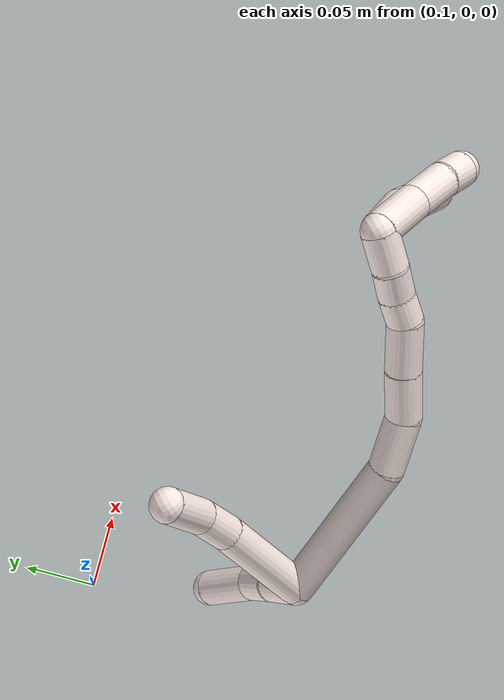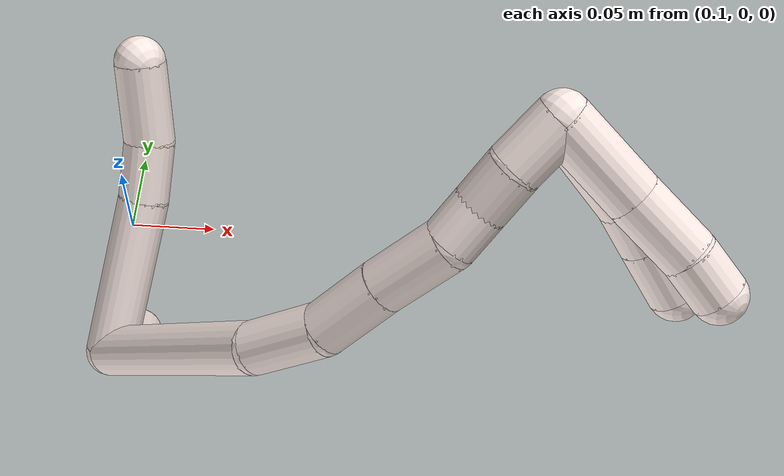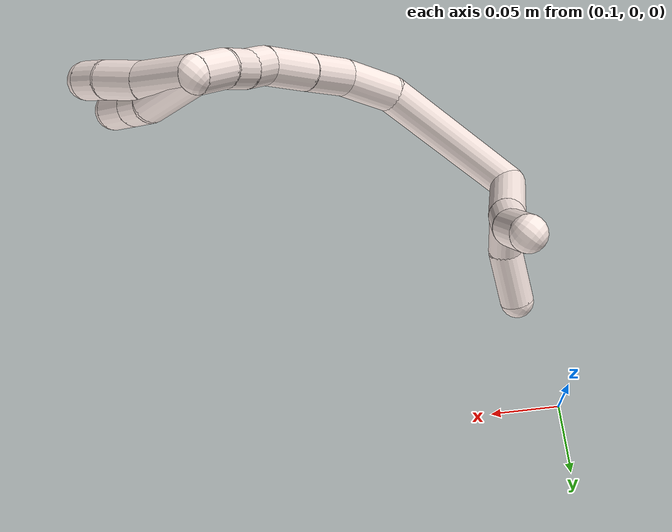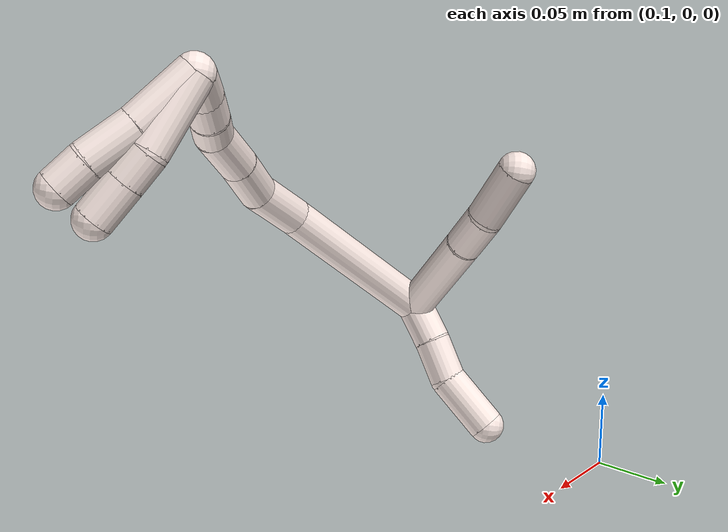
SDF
<sdf version="1.7">
 <world name="default">
  <model name="11">
   <static>0</static>
   <link name="11">
    <collision name="collision-cylinder-e_1_2_8">
     <pose>0.004165 0.039157 -0.008656 -1.78836 0.103485 -0.128796</pose>
     <geometry><cylinder><radius>0.0125</radius><length>0.080635</length></cylinder></geometry>
     <surface>
      <friction><ode><mu>1.16</mu><mu2>1.16</mu2><slip1>0</slip1><slip2>0</slip2></ode></friction>
      <contact><ode><kp>1e+06</kp><kd>1</kd><max_vel>0</max_vel><min_depth>0.001</min_depth></ode></contact>
     </surface>
    </collision>
    <visual name="visual-cylinder-e_1_2_8">
     <pose>0.004165 0.039157 -0.008656 -1.78836 0.103485 -0.128796</pose>
     <geometry><cylinder><radius>0.0125</radius><length>0.080635</length></cylinder></geometry>
     <material><ambient>1 0.933333 0.909804 1</ambient></material>
    </visual>
    <collision name="collision-cylinder-e_2_8_9">
     <pose>0.008404 0.092447 -0.021108 -1.83319 0.005107 -0.00666</pose>
     <geometry><cylinder><radius>0.0125</radius><length>0.02927</length></cylinder></geometry>
     <surface>
      <friction><ode><mu>1.16</mu><mu2>1.16</mu2><slip1>0</slip1><slip2>0</slip2></ode></friction>
      <contact><ode><kp>1e+06</kp><kd>1</kd><max_vel>0</max_vel><min_depth>0.001</min_depth></ode></contact>
     </surface>
    </collision>
    <visual name="visual-cylinder-e_2_8_9">
     <pose>0.008404 0.092447 -0.021108 -1.83319 0.005107 -0.00666</pose>
     <geometry><cylinder><radius>0.0125</radius><length>0.02927</length></cylinder></geometry>
     <material><ambient>1 0.933333 0.909804 1</ambient></material>
    </visual>
    <collision name="collision-cylinder-e_3_9_6">
     <pose>0.004015 0.125233 -0.030743 -1.87416 -0.22457 0.304525</pose>
     <geometry><cylinder><radius>0.0125</radius><length>0.040095</length></cylinder></geometry>
     <surface>
      <friction><ode><mu>1.16</mu><mu2>1.16</mu2><slip1>0</slip1><slip2>0</slip2></ode></friction>
      <contact><ode><kp>1e+06</kp><kd>1</kd><max_vel>0</max_vel><min_depth>0.001</min_depth></ode></contact>
     </surface>
    </collision>
    <visual name="visual-cylinder-e_3_9_6">
     <pose>0.004015 0.125233 -0.030743 -1.87416 -0.22457 0.304525</pose>
     <geometry><cylinder><radius>0.0125</radius><length>0.040095</length></cylinder></geometry>
     <material><ambient>1 0.933333 0.909804 1</ambient></material>
    </visual>
    <collision name="collision-cylinder-e_1_2_10">
     <pose>0.010725 -0.005543 -0.007502 2.50522 0.855005 1.88967</pose>
     <geometry><cylinder><radius>0.0125</radius><length>0.028428</length></cylinder></geometry>
     <surface>
      <friction><ode><mu>1.16</mu><mu2>1.16</mu2><slip1>0</slip1><slip2>0</slip2></ode></friction>
      <contact><ode><kp>1e+06</kp><kd>1</kd><max_vel>0</max_vel><min_depth>0.001</min_depth></ode></contact>
     </surface>
    </collision>
    <visual name="visual-cylinder-e_1_2_10">
     <pose>0.010725 -0.005543 -0.007502 2.50522 0.855005 1.88967</pose>
     <geometry><cylinder><radius>0.0125</radius><length>0.028428</length></cylinder></geometry>
     <material><ambient>1 0.933333 0.909804 1</ambient></material>
    </visual>
    <collision name="collision-cylinder-e_2_10_11">
     <pose>0.032158 -0.018191 -0.02199 2.34778 0.821316 1.60886</pose>
     <geometry><cylinder><radius>0.0125</radius><length>0.029253</length></cylinder></geometry>
     <surface>
      <friction><ode><mu>1.16</mu><mu2>1.16</mu2><slip1>0</slip1><slip2>0</slip2></ode></friction>
      <contact><ode><kp>1e+06</kp><kd>1</kd><max_vel>0</max_vel><min_depth>0.001</min_depth></ode></contact>
     </surface>
    </collision>
    <visual name="visual-cylinder-e_2_10_11">
     <pose>0.032158 -0.018191 -0.02199 2.34778 0.821316 1.60886</pose>
     <geometry><cylinder><radius>0.0125</radius><length>0.029253</length></cylinder></geometry>
     <material><ambient>1 0.933333 0.909804 1</ambient></material>
    </visual>
    <collision name="collision-cylinder-e_3_11_5">
     <pose>0.055829 -0.032304 -0.04416 2.70919 0.659438 2.00041</pose>
     <geometry><cylinder><radius>0.0125</radius><length>0.042319</length></cylinder></geometry>
     <surface>
      <friction><ode><mu>1.16</mu><mu2>1.16</mu2><slip1>0</slip1><slip2>0</slip2></ode></friction>
      <contact><ode><kp>1e+06</kp><kd>1</kd><max_vel>0</max_vel><min_depth>0.001</min_depth></ode></contact>
     </surface>
    </collision>
    <visual name="visual-cylinder-e_3_11_5">
     <pose>0.055829 -0.032304 -0.04416 2.70919 0.659438 2.00041</pose>
     <geometry><cylinder><radius>0.0125</radius><length>0.042319</length></cylinder></geometry>
     <material><ambient>1 0.933333 0.909804 1</ambient></material>
    </visual>
    <collision name="collision-cylinder-e_1_2_12">
     <pose>-0.002458 0.034378 0.048169 -0.619862 -0.041503 0.013293</pose>
     <geometry><cylinder><radius>0.0125</radius><length>0.118459</length></cylinder></geometry>
     <surface>
      <friction><ode><mu>1.16</mu><mu2>1.16</mu2><slip1>0</slip1><slip2>0</slip2></ode></friction>
      <contact><ode><kp>1e+06</kp><kd>1</kd><max_vel>0</max_vel><min_depth>0.001</min_depth></ode></contact>
     </surface>
    </collision>
    <visual name="visual-cylinder-e_1_2_12">
     <pose>-0.002458 0.034378 0.048169 -0.619862 -0.041503 0.013293</pose>
     <geometry><cylinder><radius>0.0125</radius><length>0.118459</length></cylinder></geometry>
     <material><ambient>1 0.933333 0.909804 1</ambient></material>
    </visual>
    <collision name="collision-cylinder-e_2_12_13">
     <pose>-0.000855 0.082502 0.110113 -0.784338 0.205668 -0.085312</pose>
     <geometry><cylinder><radius>0.0125</radius><length>0.039759</length></cylinder></geometry>
     <surface>
      <friction><ode><mu>1.16</mu><mu2>1.16</mu2><slip1>0</slip1><slip2>0</slip2></ode></friction>
      <contact><ode><kp>1e+06</kp><kd>1</kd><max_vel>0</max_vel><min_depth>0.001</min_depth></ode></contact>
     </surface>
    </collision>
    <visual name="visual-cylinder-e_2_12_13">
     <pose>-0.000855 0.082502 0.110113 -0.784338 0.205668 -0.085312</pose>
     <geometry><cylinder><radius>0.0125</radius><length>0.039759</length></cylinder></geometry>
     <material><ambient>1 0.933333 0.909804 1</ambient></material>
    </visual>
    <collision name="collision-cylinder-e_3_13_14">
     <pose>0.007415 0.111712 0.131615 -1.10739 0.238917 -0.148135</pose>
     <geometry><cylinder><radius>0.0125</radius><length>0.035585</length></cylinder></geometry>
     <surface>
      <friction><ode><mu>1.16</mu><mu2>1.16</mu2><slip1>0</slip1><slip2>0</slip2></ode></friction>
      <contact><ode><kp>1e+06</kp><kd>1</kd><max_vel>0</max_vel><min_depth>0.001</min_depth></ode></contact>
     </surface>
    </collision>
    <visual name="visual-cylinder-e_3_13_14">
     <pose>0.007415 0.111712 0.131615 -1.10739 0.238917 -0.148135</pose>
     <geometry><cylinder><radius>0.0125</radius><length>0.035585</length></cylinder></geometry>
     <material><ambient>1 0.933333 0.909804 1</ambient></material>
    </visual>
    <collision name="collision-cylinder-e_4_14_15">
     <pose>0.016214 0.142684 0.148065 -1.05844 0.252384 -0.14813</pose>
     <geometry><cylinder><radius>0.0125</radius><length>0.036748</length></cylinder></geometry>
     <surface>
      <friction><ode><mu>1.16</mu><mu2>1.16</mu2><slip1>0</slip1><slip2>0</slip2></ode></friction>
      <contact><ode><kp>1e+06</kp><kd>1</kd><max_vel>0</max_vel><min_depth>0.001</min_depth></ode></contact>
     </surface>
    </collision>
    <visual name="visual-cylinder-e_4_14_15">
     <pose>0.016214 0.142684 0.148065 -1.05844 0.252384 -0.14813</pose>
     <geometry><cylinder><radius>0.0125</radius><length>0.036748</length></cylinder></geometry>
     <material><ambient>1 0.933333 0.909804 1</ambient></material>
    </visual>
    <collision name="collision-cylinder-e_5_15_16">
     <pose>0.023918 0.167697 0.158588 -1.38358 0.311541 -0.25872</pose>
     <geometry><cylinder><radius>0.0125</radius><length>0.020328</length></cylinder></geometry>
     <surface>
      <friction><ode><mu>1.16</mu><mu2>1.16</mu2><slip1>0</slip1><slip2>0</slip2></ode></friction>
      <contact><ode><kp>1e+06</kp><kd>1</kd><max_vel>0</max_vel><min_depth>0.001</min_depth></ode></contact>
     </surface>
    </collision>
    <visual name="visual-cylinder-e_5_15_16">
     <pose>0.023918 0.167697 0.158588 -1.38358 0.311541 -0.25872</pose>
     <geometry><cylinder><radius>0.0125</radius><length>0.020328</length></cylinder></geometry>
     <material><ambient>1 0.933333 0.909804 1</ambient></material>
    </visual>
    <collision name="collision-cylinder-e_6_16_17">
     <pose>0.029107 0.187593 0.163049 -1.32012 0.190943 -0.14839</pose>
     <geometry><cylinder><radius>0.0125</radius><length>0.021849</length></cylinder></geometry>
     <surface>
      <friction><ode><mu>1.16</mu><mu2>1.16</mu2><slip1>0</slip1><slip2>0</slip2></ode></friction>
      <contact><ode><kp>1e+06</kp><kd>1</kd><max_vel>0</max_vel><min_depth>0.001</min_depth></ode></contact>
     </surface>
    </collision>
    <visual name="visual-cylinder-e_6_16_17">
     <pose>0.029107 0.187593 0.163049 -1.32012 0.190943 -0.14839</pose>
     <geometry><cylinder><radius>0.0125</radius><length>0.021849</length></cylinder></geometry>
     <material><ambient>1 0.933333 0.909804 1</ambient></material>
    </visual>
    <collision name="collision-cylinder-e_7_17_1">
     <pose>0.03615 0.210338 0.168647 -1.33735 0.373096 -0.29607</pose>
     <geometry><cylinder><radius>0.0125</radius><length>0.027271</length></cylinder></geometry>
     <surface>
      <friction><ode><mu>1.16</mu><mu2>1.16</mu2><slip1>0</slip1><slip2>0</slip2></ode></friction>
      <contact><ode><kp>1e+06</kp><kd>1</kd><max_vel>0</max_vel><min_depth>0.001</min_depth></ode></contact>
     </surface>
    </collision>
    <visual name="visual-cylinder-e_7_17_1">
     <pose>0.03615 0.210338 0.168647 -1.33735 0.373096 -0.29607</pose>
     <geometry><cylinder><radius>0.0125</radius><length>0.027271</length></cylinder></geometry>
     <material><ambient>1 0.933333 0.909804 1</ambient></material>
    </visual>
    <collision name="collision-cylinder-e_1_1_18">
     <pose>0.054354 0.212042 0.185738 0.645 0.641676 0.221194</pose>
     <geometry><cylinder><radius>0.0125</radius><length>0.04422</length></cylinder></geometry>
     <surface>
      <friction><ode><mu>1.16</mu><mu2>1.16</mu2><slip1>0</slip1><slip2>0</slip2></ode></friction>
      <contact><ode><kp>1e+06</kp><kd>1</kd><max_vel>0</max_vel><min_depth>0.001</min_depth></ode></contact>
     </surface>
    </collision>
    <visual name="visual-cylinder-e_1_1_18">
     <pose>0.054354 0.212042 0.185738 0.645 0.641676 0.221194</pose>
     <geometry><cylinder><radius>0.0125</radius><length>0.04422</length></cylinder></geometry>
     <material><ambient>1 0.933333 0.909804 1</ambient></material>
    </visual>
    <collision name="collision-cylinder-e_2_18_19">
     <pose>0.076561 0.193997 0.212052 0.546455 0.562476 0.161565</pose>
     <geometry><cylinder><radius>0.0125</radius><length>0.033651</length></cylinder></geometry>
     <surface>
      <friction><ode><mu>1.16</mu><mu2>1.16</mu2><slip1>0</slip1><slip2>0</slip2></ode></friction>
      <contact><ode><kp>1e+06</kp><kd>1</kd><max_vel>0</max_vel><min_depth>0.001</min_depth></ode></contact>
     </surface>
    </collision>
    <visual name="visual-cylinder-e_2_18_19">
     <pose>0.076561 0.193997 0.212052 0.546455 0.562476 0.161565</pose>
     <geometry><cylinder><radius>0.0125</radius><length>0.033651</length></cylinder></geometry>
     <material><ambient>1 0.933333 0.909804 1</ambient></material>
    </visual>
    <collision name="collision-cylinder-e_3_19_4">
     <pose>0.091407 0.18045 0.23129 0.715465 0.559653 0.214024</pose>
     <geometry><cylinder><radius>0.0125</radius><length>0.022129</length></cylinder></geometry>
     <surface>
      <friction><ode><mu>1.16</mu><mu2>1.16</mu2><slip1>0</slip1><slip2>0</slip2></ode></friction>
      <contact><ode><kp>1e+06</kp><kd>1</kd><max_vel>0</max_vel><min_depth>0.001</min_depth></ode></contact>
     </surface>
    </collision>
    <visual name="visual-cylinder-e_3_19_4">
     <pose>0.091407 0.18045 0.23129 0.715465 0.559653 0.214024</pose>
     <geometry><cylinder><radius>0.0125</radius><length>0.022129</length></cylinder></geometry>
     <material><ambient>1 0.933333 0.909804 1</ambient></material>
    </visual>
    <collision name="collision-cylinder-e_1_1_20">
     <pose>0.059516 0.207777 0.181425 0.987508 0.799945 0.447459</pose>
     <geometry><cylinder><radius>0.0125</radius><length>0.051289</length></cylinder></geometry>
     <surface>
      <friction><ode><mu>1.16</mu><mu2>1.16</mu2><slip1>0</slip1><slip2>0</slip2></ode></friction>
      <contact><ode><kp>1e+06</kp><kd>1</kd><max_vel>0</max_vel><min_depth>0.001</min_depth></ode></contact>
     </surface>
    </collision>
    <visual name="visual-cylinder-e_1_1_20">
     <pose>0.059516 0.207777 0.181425 0.987508 0.799945 0.447459</pose>
     <geometry><cylinder><radius>0.0125</radius><length>0.051289</length></cylinder></geometry>
     <material><ambient>1 0.933333 0.909804 1</ambient></material>
    </visual>
    <collision name="collision-cylinder-e_2_20_21">
     <pose>0.083632 0.18582 0.19674 0.910153 0.570231 0.284904</pose>
     <geometry><cylinder><radius>0.0125</radius><length>0.021195</length></cylinder></geometry>
     <surface>
      <friction><ode><mu>1.16</mu><mu2>1.16</mu2><slip1>0</slip1><slip2>0</slip2></ode></friction>
      <contact><ode><kp>1e+06</kp><kd>1</kd><max_vel>0</max_vel><min_depth>0.001</min_depth></ode></contact>
     </surface>
    </collision>
    <visual name="visual-cylinder-e_2_20_21">
     <pose>0.083632 0.18582 0.19674 0.910153 0.570231 0.284904</pose>
     <geometry><cylinder><radius>0.0125</radius><length>0.021195</length></cylinder></geometry>
     <material><ambient>1 0.933333 0.909804 1</ambient></material>
    </visual>
    <collision name="collision-cylinder-e_3_21_3">
     <pose>0.096767 0.169707 0.20943 0.898735 0.569139 0.280289</pose>
     <geometry><cylinder><radius>0.0125</radius><length>0.027516</length></cylinder></geometry>
     <surface>
      <friction><ode><mu>1.16</mu><mu2>1.16</mu2><slip1>0</slip1><slip2>0</slip2></ode></friction>
      <contact><ode><kp>1e+06</kp><kd>1</kd><max_vel>0</max_vel><min_depth>0.001</min_depth></ode></contact>
     </surface>
    </collision>
    <visual name="visual-cylinder-e_3_21_3">
     <pose>0.096767 0.169707 0.20943 0.898735 0.569139 0.280289</pose>
     <geometry><cylinder><radius>0.0125</radius><length>0.027516</length></cylinder></geometry>
     <material><ambient>1 0.933333 0.909804 1</ambient></material>
    </visual>
    <collision name="collision-sphere-3">
     <pose>0.104181 0.160638 0.216645 0 -0 0</pose>
     <geometry><sphere><radius>0.0125</radius></sphere></geometry>
     <surface>
      <friction><ode><mu>1.16</mu><mu2>1.16</mu2><slip1>0</slip1><slip2>0</slip2></ode></friction>
      <contact><ode><kp>1e+06</kp><kd>1</kd><max_vel>0</max_vel><min_depth>0.001</min_depth></ode></contact>
     </surface>
    </collision>
    <visual name="visual-sphere-3">
     <pose>0.104181 0.160638 0.216645 0 -0 0</pose>
     <geometry><sphere><radius>0.0125</radius></sphere></geometry>
     <material><ambient>1 0.933333 0.909804 1</ambient></material>
    </visual>
    <collision name="collision-sphere-21">
     <pose>0.089353 0.178776 0.202214 0 -0 0</pose>
     <geometry><sphere><radius>0.0125</radius></sphere></geometry>
     <surface>
      <friction><ode><mu>1.16</mu><mu2>1.16</mu2><slip1>0</slip1><slip2>0</slip2></ode></friction>
      <contact><ode><kp>1e+06</kp><kd>1</kd><max_vel>0</max_vel><min_depth>0.001</min_depth></ode></contact>
     </surface>
    </collision>
    <visual name="visual-sphere-21">
     <pose>0.089353 0.178776 0.202214 0 -0 0</pose>
     <geometry><sphere><radius>0.0125</radius></sphere></geometry>
     <material><ambient>1 0.933333 0.909804 1</ambient></material>
    </visual>
    <collision name="collision-sphere-20">
     <pose>0.077911 0.192864 0.191266 0 -0 0</pose>
     <geometry><sphere><radius>0.0125</radius></sphere></geometry>
     <surface>
      <friction><ode><mu>1.16</mu><mu2>1.16</mu2><slip1>0</slip1><slip2>0</slip2></ode></friction>
      <contact><ode><kp>1e+06</kp><kd>1</kd><max_vel>0</max_vel><min_depth>0.001</min_depth></ode></contact>
     </surface>
    </collision>
    <visual name="visual-sphere-20">
     <pose>0.077911 0.192864 0.191266 0 -0 0</pose>
     <geometry><sphere><radius>0.0125</radius></sphere></geometry>
     <material><ambient>1 0.933333 0.909804 1</ambient></material>
    </visual>
    <collision name="collision-sphere-4">
     <pose>0.097282 0.174299 0.238368 0 -0 0</pose>
     <geometry><sphere><radius>0.0125</radius></sphere></geometry>
     <surface>
      <friction><ode><mu>1.16</mu><mu2>1.16</mu2><slip1>0</slip1><slip2>0</slip2></ode></friction>
      <contact><ode><kp>1e+06</kp><kd>1</kd><max_vel>0</max_vel><min_depth>0.001</min_depth></ode></contact>
     </surface>
    </collision>
    <visual name="visual-sphere-4">
     <pose>0.097282 0.174299 0.238368 0 -0 0</pose>
     <geometry><sphere><radius>0.0125</radius></sphere></geometry>
     <material><ambient>1 0.933333 0.909804 1</ambient></material>
    </visual>
    <collision name="collision-sphere-11">
     <pose>0.042866 -0.025296 -0.028976 0 -0 0</pose>
     <geometry><sphere><radius>0.0125</radius></sphere></geometry>
     <surface>
      <friction><ode><mu>1.16</mu><mu2>1.16</mu2><slip1>0</slip1><slip2>0</slip2></ode></friction>
      <contact><ode><kp>1e+06</kp><kd>1</kd><max_vel>0</max_vel><min_depth>0.001</min_depth></ode></contact>
     </surface>
    </collision>
    <visual name="visual-sphere-11">
     <pose>0.042866 -0.025296 -0.028976 0 -0 0</pose>
     <geometry><sphere><radius>0.0125</radius></sphere></geometry>
     <material><ambient>1 0.933333 0.909804 1</ambient></material>
    </visual>
    <collision name="collision-sphere-10">
     <pose>0.021451 -0.011086 -0.015003 0 -0 0</pose>
     <geometry><sphere><radius>0.0125</radius></sphere></geometry>
     <surface>
      <friction><ode><mu>1.16</mu><mu2>1.16</mu2><slip1>0</slip1><slip2>0</slip2></ode></friction>
      <contact><ode><kp>1e+06</kp><kd>1</kd><max_vel>0</max_vel><min_depth>0.001</min_depth></ode></contact>
     </surface>
    </collision>
    <visual name="visual-sphere-10">
     <pose>0.021451 -0.011086 -0.015003 0 -0 0</pose>
     <geometry><sphere><radius>0.0125</radius></sphere></geometry>
     <material><ambient>1 0.933333 0.909804 1</ambient></material>
    </visual>
    <collision name="collision-sphere-6">
     <pose>-0.000449 0.143884 -0.036581 0 -0 0</pose>
     <geometry><sphere><radius>0.0125</radius></sphere></geometry>
     <surface>
      <friction><ode><mu>1.16</mu><mu2>1.16</mu2><slip1>0</slip1><slip2>0</slip2></ode></friction>
      <contact><ode><kp>1e+06</kp><kd>1</kd><max_vel>0</max_vel><min_depth>0.001</min_depth></ode></contact>
     </surface>
    </collision>
    <visual name="visual-sphere-6">
     <pose>-0.000449 0.143884 -0.036581 0 -0 0</pose>
     <geometry><sphere><radius>0.0125</radius></sphere></geometry>
     <material><ambient>1 0.933333 0.909804 1</ambient></material>
    </visual>
    <collision name="collision-sphere-9">
     <pose>0.008479 0.106581 -0.024904 0 -0 0</pose>
     <geometry><sphere><radius>0.0125</radius></sphere></geometry>
     <surface>
      <friction><ode><mu>1.16</mu><mu2>1.16</mu2><slip1>0</slip1><slip2>0</slip2></ode></friction>
      <contact><ode><kp>1e+06</kp><kd>1</kd><max_vel>0</max_vel><min_depth>0.001</min_depth></ode></contact>
     </surface>
    </collision>
    <visual name="visual-sphere-9">
     <pose>0.008479 0.106581 -0.024904 0 -0 0</pose>
     <geometry><sphere><radius>0.0125</radius></sphere></geometry>
     <material><ambient>1 0.933333 0.909804 1</ambient></material>
    </visual>
    <collision name="collision-sphere-2">
     <geometry><sphere><radius>0.0125</radius></sphere></geometry>
     <surface>
      <friction><ode><mu>1.16</mu><mu2>1.16</mu2><slip1>0</slip1><slip2>0</slip2></ode></friction>
      <contact><ode><kp>1e+06</kp><kd>1</kd><max_vel>0</max_vel><min_depth>0.001</min_depth></ode></contact>
     </surface>
    </collision>
    <visual name="visual-sphere-2">
     <geometry><sphere><radius>0.0125</radius></sphere></geometry>
     <material><ambient>1 0.933333 0.909804 1</ambient></material>
    </visual>
    <collision name="collision-sphere-19">
     <pose>0.085533 0.186601 0.224213 0 -0 0</pose>
     <geometry><sphere><radius>0.0125</radius></sphere></geometry>
     <surface>
      <friction><ode><mu>1.16</mu><mu2>1.16</mu2><slip1>0</slip1><slip2>0</slip2></ode></friction>
      <contact><ode><kp>1e+06</kp><kd>1</kd><max_vel>0</max_vel><min_depth>0.001</min_depth></ode></contact>
     </surface>
    </collision>
    <visual name="visual-sphere-19">
     <pose>0.085533 0.186601 0.224213 0 -0 0</pose>
     <geometry><sphere><radius>0.0125</radius></sphere></geometry>
     <material><ambient>1 0.933333 0.909804 1</ambient></material>
    </visual>
    <collision name="collision-sphere-8">
     <pose>0.00833 0.078313 -0.017312 0 -0 0</pose>
     <geometry><sphere><radius>0.0125</radius></sphere></geometry>
     <surface>
      <friction><ode><mu>1.16</mu><mu2>1.16</mu2><slip1>0</slip1><slip2>0</slip2></ode></friction>
      <contact><ode><kp>1e+06</kp><kd>1</kd><max_vel>0</max_vel><min_depth>0.001</min_depth></ode></contact>
     </surface>
    </collision>
    <visual name="visual-sphere-8">
     <pose>0.00833 0.078313 -0.017312 0 -0 0</pose>
     <geometry><sphere><radius>0.0125</radius></sphere></geometry>
     <material><ambient>1 0.933333 0.909804 1</ambient></material>
    </visual>
    <collision name="collision-sphere-5">
     <pose>0.068793 -0.039312 -0.059344 0 -0 0</pose>
     <geometry><sphere><radius>0.0125</radius></sphere></geometry>
     <surface>
      <friction><ode><mu>1.16</mu><mu2>1.16</mu2><slip1>0</slip1><slip2>0</slip2></ode></friction>
      <contact><ode><kp>1e+06</kp><kd>1</kd><max_vel>0</max_vel><min_depth>0.001</min_depth></ode></contact>
     </surface>
    </collision>
    <visual name="visual-sphere-5">
     <pose>0.068793 -0.039312 -0.059344 0 -0 0</pose>
     <geometry><sphere><radius>0.0125</radius></sphere></geometry>
     <material><ambient>1 0.933333 0.909804 1</ambient></material>
    </visual>
    <collision name="collision-sphere-12">
     <pose>-0.004915 0.068756 0.096338 0 -0 0</pose>
     <geometry><sphere><radius>0.0125</radius></sphere></geometry>
     <surface>
      <friction><ode><mu>1.16</mu><mu2>1.16</mu2><slip1>0</slip1><slip2>0</slip2></ode></friction>
      <contact><ode><kp>1e+06</kp><kd>1</kd><max_vel>0</max_vel><min_depth>0.001</min_depth></ode></contact>
     </surface>
    </collision>
    <visual name="visual-sphere-12">
     <pose>-0.004915 0.068756 0.096338 0 -0 0</pose>
     <geometry><sphere><radius>0.0125</radius></sphere></geometry>
     <material><ambient>1 0.933333 0.909804 1</ambient></material>
    </visual>
    <collision name="collision-sphere-13">
     <pose>0.003205 0.096249 0.123888 0 -0 0</pose>
     <geometry><sphere><radius>0.0125</radius></sphere></geometry>
     <surface>
      <friction><ode><mu>1.16</mu><mu2>1.16</mu2><slip1>0</slip1><slip2>0</slip2></ode></friction>
      <contact><ode><kp>1e+06</kp><kd>1</kd><max_vel>0</max_vel><min_depth>0.001</min_depth></ode></contact>
     </surface>
    </collision>
    <visual name="visual-sphere-13">
     <pose>0.003205 0.096249 0.123888 0 -0 0</pose>
     <geometry><sphere><radius>0.0125</radius></sphere></geometry>
     <material><ambient>1 0.933333 0.909804 1</ambient></material>
    </visual>
    <collision name="collision-sphere-14">
     <pose>0.011626 0.127176 0.139343 0 -0 0</pose>
     <geometry><sphere><radius>0.0125</radius></sphere></geometry>
     <surface>
      <friction><ode><mu>1.16</mu><mu2>1.16</mu2><slip1>0</slip1><slip2>0</slip2></ode></friction>
      <contact><ode><kp>1e+06</kp><kd>1</kd><max_vel>0</max_vel><min_depth>0.001</min_depth></ode></contact>
     </surface>
    </collision>
    <visual name="visual-sphere-14">
     <pose>0.011626 0.127176 0.139343 0 -0 0</pose>
     <geometry><sphere><radius>0.0125</radius></sphere></geometry>
     <material><ambient>1 0.933333 0.909804 1</ambient></material>
    </visual>
    <collision name="collision-sphere-15">
     <pose>0.020802 0.158191 0.156787 0 -0 0</pose>
     <geometry><sphere><radius>0.0125</radius></sphere></geometry>
     <surface>
      <friction><ode><mu>1.16</mu><mu2>1.16</mu2><slip1>0</slip1><slip2>0</slip2></ode></friction>
      <contact><ode><kp>1e+06</kp><kd>1</kd><max_vel>0</max_vel><min_depth>0.001</min_depth></ode></contact>
     </surface>
    </collision>
    <visual name="visual-sphere-15">
     <pose>0.020802 0.158191 0.156787 0 -0 0</pose>
     <geometry><sphere><radius>0.0125</radius></sphere></geometry>
     <material><ambient>1 0.933333 0.909804 1</ambient></material>
    </visual>
    <collision name="collision-sphere-16">
     <pose>0.027033 0.177203 0.160388 0 -0 0</pose>
     <geometry><sphere><radius>0.0125</radius></sphere></geometry>
     <surface>
      <friction><ode><mu>1.16</mu><mu2>1.16</mu2><slip1>0</slip1><slip2>0</slip2></ode></friction>
      <contact><ode><kp>1e+06</kp><kd>1</kd><max_vel>0</max_vel><min_depth>0.001</min_depth></ode></contact>
     </surface>
    </collision>
    <visual name="visual-sphere-16">
     <pose>0.027033 0.177203 0.160388 0 -0 0</pose>
     <geometry><sphere><radius>0.0125</radius></sphere></geometry>
     <material><ambient>1 0.933333 0.909804 1</ambient></material>
    </visual>
    <collision name="collision-sphere-17">
     <pose>0.03118 0.197984 0.16571 0 -0 0</pose>
     <geometry><sphere><radius>0.0125</radius></sphere></geometry>
     <surface>
      <friction><ode><mu>1.16</mu><mu2>1.16</mu2><slip1>0</slip1><slip2>0</slip2></ode></friction>
      <contact><ode><kp>1e+06</kp><kd>1</kd><max_vel>0</max_vel><min_depth>0.001</min_depth></ode></contact>
     </surface>
    </collision>
    <visual name="visual-sphere-17">
     <pose>0.03118 0.197984 0.16571 0 -0 0</pose>
     <geometry><sphere><radius>0.0125</radius></sphere></geometry>
     <material><ambient>1 0.933333 0.909804 1</ambient></material>
    </visual>
    <collision name="collision-sphere-1">
     <pose>0.041121 0.222691 0.171584 0 -0 0</pose>
     <geometry><sphere><radius>0.0125</radius></sphere></geometry>
     <surface>
      <friction><ode><mu>1.16</mu><mu2>1.16</mu2><slip1>0</slip1><slip2>0</slip2></ode></friction>
      <contact><ode><kp>1e+06</kp><kd>1</kd><max_vel>0</max_vel><min_depth>0.001</min_depth></ode></contact>
     </surface>
    </collision>
    <visual name="visual-sphere-1">
     <pose>0.041121 0.222691 0.171584 0 -0 0</pose>
     <geometry><sphere><radius>0.0125</radius></sphere></geometry>
     <material><ambient>1 0.933333 0.909804 1</ambient></material>
    </visual>
    <collision name="collision-sphere-18">
     <pose>0.067588 0.201394 0.199892 0 -0 0</pose>
     <geometry><sphere><radius>0.0125</radius></sphere></geometry>
     <surface>
      <friction><ode><mu>1.16</mu><mu2>1.16</mu2><slip1>0</slip1><slip2>0</slip2></ode></friction>
      <contact><ode><kp>1e+06</kp><kd>1</kd><max_vel>0</max_vel><min_depth>0.001</min_depth></ode></contact>
     </surface>
    </collision>
    <visual name="visual-sphere-18">
     <pose>0.067588 0.201394 0.199892 0 -0 0</pose>
     <geometry><sphere><radius>0.0125</radius></sphere></geometry>
     <material><ambient>1 0.933333 0.909804 1</ambient></material>
    </visual>
    <inertial>
     <pose>0.028645 0.103741 0.088034 0 -0 0</pose>
     <mass>0.75</mass>
     <inertia>
      <ixx>0.000272</ixx>
      <ixy>0</ixy>
      <ixz>0</ixz>
      <iyy>0.00018</iyy>
      <iyz>0</iyz>
      <izz>-0.000153</izz>
     </inertia>
    </inertial>
   </link>
   <pose>0.124123 -0.14207 0.090277 1.37849 0.547421 0.667655</pose>
  </model>
 </world>
</sdf>
